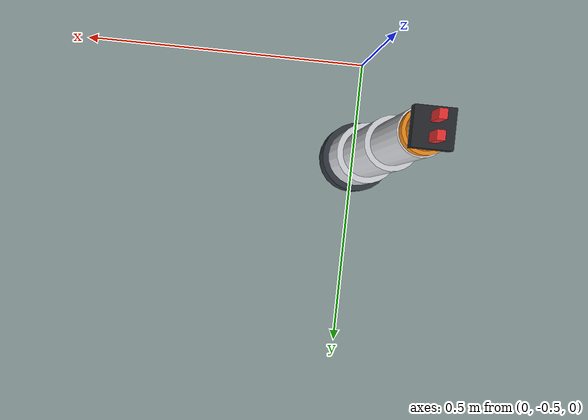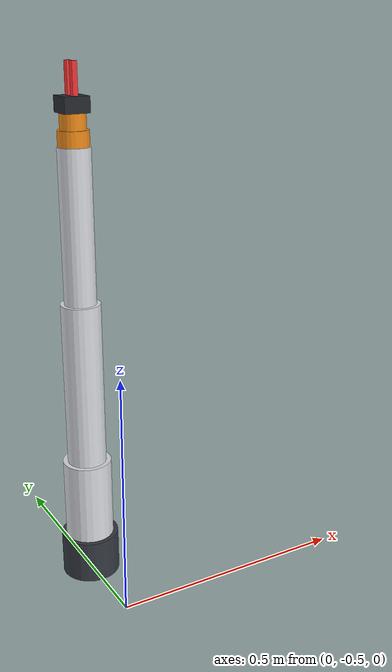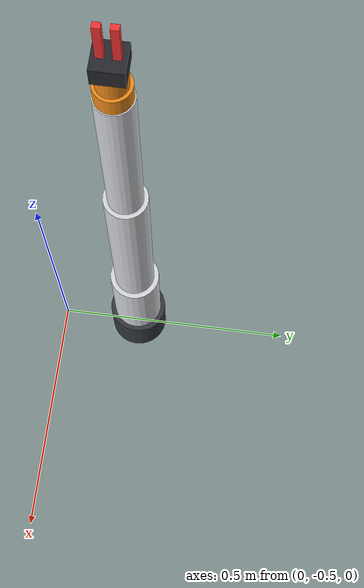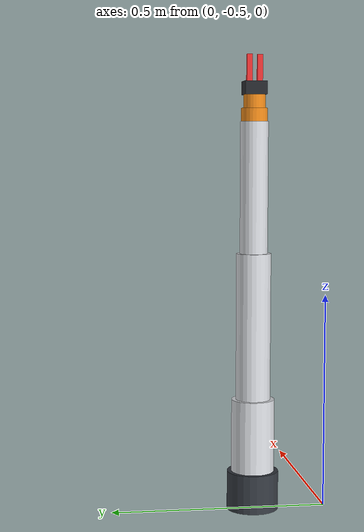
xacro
<?xml version="1.0"?>
<robot xmlns:xacro="http://www.ros.org/wiki/xacro" name="chess_arm">

  <xacro:arg name="ros2_control_hardware_type" default="mock_components"/>
  <xacro:arg name="with_world" default="false"/>

  <xacro:include filename="$(find chess_arm_description)/urdf/chess_arm.urdf.xacro"/>
</robot>

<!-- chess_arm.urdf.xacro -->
<robot xmlns:xacro="http://www.ros.org/wiki/xacro" name="chess_arm">

  <xacro:arg name="ros2_control_hardware_type" default="mock_components"/>
  <xacro:arg name="with_world" default="true"/>

  <xacro:include filename="$(find chess_arm_description)/urdf/arm_params.xacro"/>
  <xacro:include filename="$(find chess_arm_description)/urdf/materials.xacro"/>
  <xacro:include filename="$(find chess_arm_description)/urdf/inertial_macros.xacro"/>
  <xacro:include filename="$(find chess_arm_description)/urdf/arm.macros.xacro"/>
  <xacro:include filename="$(find chess_arm_description)/urdf/gripper.macros.xacro"/>
  <xacro:include filename="$(find chess_arm_description)/urdf/scene.macros.xacro"/>
  <xacro:include filename="$(find chess_arm_description)/urdf/chess_arm.ros2_control.xacro"/>

  <!-- World root frame (fixed frame in RViz / planning frame in MoveIt). -->
  <link name="world"/>

  <!-- Arm base placed in the world: centred on board X, 330 mm behind near edge. -->
  <joint name="world_to_base" type="fixed">
    <parent link="world"/>
    <child  link="base_link"/>
    <origin xyz="${base_x} ${base_y} 0" rpy="0 0 0"/>
  </joint>

  <xacro:build_arm/>
  <xacro:build_gripper parent="link6"/>

  <xacro:chess_arm_ros2_control hw_type="$(arg ros2_control_hardware_type)"/>

  <xacro:if value="$(arg with_world)">
    <xacro:build_board parent="world"/>
    <xacro:build_graveyard parent="world"/>
  </xacro:if>
</robot>

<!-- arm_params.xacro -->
<robot xmlns:xacro="http://www.ros.org/wiki/xacro">

  <!-- Link lengths (m) -->
  <xacro:property name="base_height"  value="0.090"/>  <!-- ground to J1 yaw axis        -->
  <xacro:property name="shoulder_z"   value="0.170"/>  <!-- J1 to J2 shoulder-pitch axis -->
  <xacro:property name="upper_arm"    value="0.340"/>  <!-- J2 to J3 elbow               -->
  <xacro:property name="forearm"      value="0.300"/>  <!-- J3 to wrist centre (J5)      -->
  <xacro:property name="wrist"        value="0.060"/>  <!-- wrist centre to J6 flange    -->
  <xacro:property name="tool_tip"     value="0.110"/>  <!-- flange to gripper grasp pt   -->

  <!-- Arm base (J1 yaw axis) placement in the world (board centre = world origin,
       board top surface at z=0). Base centred on board X, 330 mm behind near edge. -->
  <xacro:property name="base_x"       value="0.0"/>
  <xacro:property name="base_y"       value="-0.330"/>

  <!-- Joint limits (deg), velocity (deg/s), effort (N*m) -->
  <xacro:property name="j1_lo" value="-180"/> <xacro:property name="j1_hi" value="180"/>
  <xacro:property name="j2_lo" value="-110"/> <xacro:property name="j2_hi" value="110"/>
  <xacro:property name="j3_lo" value="-160"/> <xacro:property name="j3_hi" value="160"/>
  <xacro:property name="j4_lo" value="-180"/> <xacro:property name="j4_hi" value="180"/>
  <xacro:property name="j5_lo" value="-120"/> <xacro:property name="j5_hi" value="120"/>
  <xacro:property name="j6_lo" value="-360"/> <xacro:property name="j6_hi" value="360"/>

  <xacro:property name="j1_vel" value="120"/> <xacro:property name="j1_eff" value="25"/>
  <xacro:property name="j2_vel" value="100"/> <xacro:property name="j2_eff" value="40"/>
  <xacro:property name="j3_vel" value="120"/> <xacro:property name="j3_eff" value="25"/>
  <xacro:property name="j4_vel" value="200"/> <xacro:property name="j4_eff" value="8"/>
  <xacro:property name="j5_vel" value="200"/> <xacro:property name="j5_eff" value="8"/>
  <xacro:property name="j6_vel" value="300"/> <xacro:property name="j6_eff" value="4"/>

  <!-- Gripper: single-DOF parallel approximation of the Fin Ray fingers -->
  <xacro:property name="finger_travel" value="0.020"/>   <!-- per-finger open stroke (m)   -->
  <xacro:property name="finger_close"  value="0.006"/>   <!-- per-finger close stroke (m)  -->
  <xacro:property name="finger_half_gap" value="0.012"/> <!-- finger offset from centre @0 -->
  <xacro:property name="finger_length" value="0.090"/>   <!-- finger reach toward grasp pt -->
  <xacro:property name="gripper_vel" value="0.10"/>
  <xacro:property name="gripper_eff" value="10"/>

  <!-- Board: standard tournament Staunton -->
  <xacro:property name="square_size"   value="0.05715"/> <!-- 57.15 mm (2.25")              -->
  <xacro:property name="playing_field" value="0.4572"/>  <!-- 8 * square                    -->
  <xacro:property name="board_border"  value="0.025"/>
  <xacro:property name="board_thick"   value="0.012"/>
  <xacro:property name="board_outer"   value="${playing_field + 2*board_border}"/>

  <!-- Graveyard tray: 16 slots (2 rows x 8 cols) on the +X side -->
  <xacro:property name="gy_row0_x" value="0.285"/>  <!-- near row clears board edge 0.2536 -->
  <xacro:property name="gy_row1_x" value="0.320"/>
  <xacro:property name="gy_col0_y" value="-0.160"/> <!-- 8 cols at 40mm pitch to +0.120    -->
  <xacro:property name="gy_pitch"  value="0.040"/>
  <xacro:property name="gy_slot_r" value="0.018"/>

  <!-- Task heights (m above board surface) -->
  <xacro:property name="grasp_z" value="0.030"/>
  <xacro:property name="lift_z"  value="0.110"/>

  <!-- Derived: distance wrist-centre to grasp point along the tool axis -->
  <xacro:property name="tool_offset" value="${wrist + tool_tip}"/>
</robot>

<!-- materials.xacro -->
<robot xmlns:xacro="http://www.ros.org/wiki/xacro">

  <material name="arm_base">     <color rgba="0.20 0.22 0.25 1.0"/></material>
  <material name="arm_link">     <color rgba="0.85 0.86 0.88 1.0"/></material>
  <material name="arm_wrist">    <color rgba="0.95 0.55 0.10 1.0"/></material>
  <material name="gripper_body"> <color rgba="0.15 0.16 0.18 1.0"/></material>
  <material name="gripper_finger"><color rgba="0.95 0.20 0.20 1.0"/></material>

  <material name="board_light">  <color rgba="0.93 0.86 0.70 1.0"/></material>
  <material name="board_dark">   <color rgba="0.40 0.26 0.16 1.0"/></material>
  <material name="board_frame">  <color rgba="0.12 0.08 0.05 1.0"/></material>
  <material name="graveyard">    <color rgba="0.30 0.30 0.33 1.0"/></material>
  <material name="graveyard_slot"><color rgba="0.55 0.10 0.10 1.0"/></material>
</robot>

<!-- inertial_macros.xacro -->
<robot xmlns:xacro="http://www.ros.org/wiki/xacro">

  <!-- Solid box of size (x,y,z), COM at (cx,cy,cz). -->
  <xacro:macro name="box_inertial" params="mass x y z cx:=0 cy:=0 cz:=0">
    <inertial>
      <origin xyz="${cx} ${cy} ${cz}" rpy="0 0 0"/>
      <mass value="${mass}"/>
      <inertia
        ixx="${mass*(y*y + z*z)/12.0}" ixy="0.0" ixz="0.0"
        iyy="${mass*(x*x + z*z)/12.0}" iyz="0.0"
        izz="${mass*(x*x + y*y)/12.0}"/>
    </inertial>
  </xacro:macro>

  <!-- Solid cylinder, long axis along local Z, length L, radius r, COM at (cx,cy,cz). -->
  <xacro:macro name="cylinder_inertial" params="mass radius length cx:=0 cy:=0 cz:=0">
    <inertial>
      <origin xyz="${cx} ${cy} ${cz}" rpy="0 0 0"/>
      <mass value="${mass}"/>
      <inertia
        ixx="${mass*(3.0*radius*radius + length*length)/12.0}" ixy="0.0" ixz="0.0"
        iyy="${mass*(3.0*radius*radius + length*length)/12.0}" iyz="0.0"
        izz="${mass*radius*radius/2.0}"/>
    </inertial>
  </xacro:macro>
</robot>

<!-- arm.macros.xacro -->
<robot xmlns:xacro="http://www.ros.org/wiki/xacro">

  <!-- A cylindrical segment spanning local 0..length along +Z (joint at its base). -->
  <xacro:macro name="seg_link" params="name radius length mass material">
    <link name="${name}">
      <visual>
        <origin xyz="0 0 ${length/2.0}" rpy="0 0 0"/>
        <geometry><cylinder radius="${radius}" length="${length}"/></geometry>
        <material name="${material}"/>
      </visual>
      <collision>
        <origin xyz="0 0 ${length/2.0}" rpy="0 0 0"/>
        <geometry><cylinder radius="${radius}" length="${length}"/></geometry>
      </collision>
      <xacro:cylinder_inertial mass="${mass}" radius="${radius}" length="${length}" cz="${length/2.0}"/>
    </link>
  </xacro:macro>

  <!-- A short hub centred on its own origin (for the wrist joints whose axes
       coincide at the wrist centre). -->
  <xacro:macro name="hub_link" params="name radius length mass material">
    <link name="${name}">
      <visual>
        <origin xyz="0 0 0" rpy="0 0 0"/>
        <geometry><cylinder radius="${radius}" length="${length}"/></geometry>
        <material name="${material}"/>
      </visual>
      <collision>
        <origin xyz="0 0 0" rpy="0 0 0"/>
        <geometry><cylinder radius="${radius}" length="${length}"/></geometry>
      </collision>
      <xacro:cylinder_inertial mass="${mass}" radius="${radius}" length="${length}"/>
    </link>
  </xacro:macro>

  <!-- One revolute joint. Limits/velocity given in degrees, converted to rad. -->
  <xacro:macro name="rev_joint"
      params="name parent child ox oy oz ax ay az lo_deg hi_deg vel_deg eff">
    <joint name="${name}" type="revolute">
      <parent link="${parent}"/>
      <child  link="${child}"/>
      <origin xyz="${ox} ${oy} ${oz}" rpy="0 0 0"/>
      <axis xyz="${ax} ${ay} ${az}"/>
      <limit lower="${lo_deg*pi/180.0}" upper="${hi_deg*pi/180.0}"
             effort="${eff}" velocity="${vel_deg*pi/180.0}"/>
    </joint>
  </xacro:macro>

  <!-- Build base_link .. link6 (flange). Gripper is attached separately by the
       caller via build_gripper(parent=link6). -->
  <xacro:macro name="build_arm">

    <xacro:seg_link name="base_link" radius="0.060" length="${base_height}" mass="0.60" material="arm_base"/>

    <xacro:rev_joint name="J1_base_yaw" parent="base_link" child="link1"
        ox="0" oy="0" oz="${base_height}" ax="0" ay="0" az="1"
        lo_deg="${j1_lo}" hi_deg="${j1_hi}" vel_deg="${j1_vel}" eff="${j1_eff}"/>
    <xacro:seg_link name="link1" radius="0.050" length="${shoulder_z}" mass="0.40" material="arm_link"/>

    <xacro:rev_joint name="J2_shoulder_pitch" parent="link1" child="link2"
        ox="0" oy="0" oz="${shoulder_z}" ax="0" ay="1" az="0"
        lo_deg="${j2_lo}" hi_deg="${j2_hi}" vel_deg="${j2_vel}" eff="${j2_eff}"/>
    <xacro:seg_link name="link2" radius="0.040" length="${upper_arm}" mass="0.50" material="arm_link"/>

    <xacro:rev_joint name="J3_elbow_pitch" parent="link2" child="link3"
        ox="0" oy="0" oz="${upper_arm}" ax="0" ay="1" az="0"
        lo_deg="${j3_lo}" hi_deg="${j3_hi}" vel_deg="${j3_vel}" eff="${j3_eff}"/>
    <xacro:seg_link name="link3" radius="0.032" length="${forearm}" mass="0.35" material="arm_link"/>

    <!-- J4 sits at the wrist centre (top of the forearm); J5,J6 coincide there. -->
    <xacro:rev_joint name="J4_forearm_roll" parent="link3" child="link4"
        ox="0" oy="0" oz="${forearm}" ax="0" ay="0" az="1"
        lo_deg="${j4_lo}" hi_deg="${j4_hi}" vel_deg="${j4_vel}" eff="${j4_eff}"/>
    <xacro:hub_link name="link4" radius="0.030" length="0.060" mass="0.12" material="arm_wrist"/>

    <xacro:rev_joint name="J5_wrist_pitch" parent="link4" child="link5"
        ox="0" oy="0" oz="0" ax="0" ay="1" az="0"
        lo_deg="${j5_lo}" hi_deg="${j5_hi}" vel_deg="${j5_vel}" eff="${j5_eff}"/>
    <xacro:hub_link name="link5" radius="0.028" length="0.050" mass="0.12" material="arm_wrist"/>

    <xacro:rev_joint name="J6_wrist_roll" parent="link5" child="link6"
        ox="0" oy="0" oz="0" ax="0" ay="0" az="1"
        lo_deg="${j6_lo}" hi_deg="${j6_hi}" vel_deg="${j6_vel}" eff="${j6_eff}"/>
    <xacro:seg_link name="link6" radius="0.025" length="${wrist}" mass="0.10" material="arm_wrist"/>

  </xacro:macro>
</robot>

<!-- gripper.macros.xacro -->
<robot xmlns:xacro="http://www.ros.org/wiki/xacro">

  <xacro:macro name="build_gripper" params="parent">

    <!-- Gripper body bolted to the flange (parent = link6, flange end at z=wrist). -->
    <joint name="flange_to_gripper" type="fixed">
      <parent link="${parent}"/>
      <child  link="gripper_base"/>
      <origin xyz="0 0 ${wrist}" rpy="0 0 0"/>
    </joint>
    <link name="gripper_base">
      <visual>
        <origin xyz="0 0 0.015" rpy="0 0 0"/>
        <geometry><box size="0.050 0.050 0.030"/></geometry>
        <material name="gripper_body"/>
      </visual>
      <collision>
        <origin xyz="0 0 0.015" rpy="0 0 0"/>
        <geometry><box size="0.050 0.050 0.030"/></geometry>
      </collision>
      <xacro:box_inertial mass="0.10" x="0.050" y="0.050" z="0.030" cz="0.015"/>
    </link>

    <!-- Left jaw: the single actuated DOF. -->
    <joint name="gripper_left_joint" type="prismatic">
      <parent link="gripper_base"/>
      <child  link="gripper_left_finger"/>
      <origin xyz="0 ${finger_half_gap} 0" rpy="0 0 0"/>
      <axis xyz="0 1 0"/>
      <limit lower="${-finger_close}" upper="${finger_travel}"
             effort="${gripper_eff}" velocity="${gripper_vel}"/>
    </joint>
    <link name="gripper_left_finger">
      <visual>
        <origin xyz="0 0 ${finger_length/2.0}" rpy="0 0 0"/>
        <geometry><box size="0.010 0.012 ${finger_length}"/></geometry>
        <material name="gripper_finger"/>
      </visual>
      <collision>
        <origin xyz="0 0 ${finger_length/2.0}" rpy="0 0 0"/>
        <geometry><box size="0.010 0.012 ${finger_length}"/></geometry>
      </collision>
      <xacro:box_inertial mass="0.03" x="0.010" y="0.012" z="${finger_length}" cz="${finger_length/2.0}"/>
    </link>

    <!-- Right jaw: mirrors the left (one physical servo). -->
    <joint name="gripper_right_joint" type="prismatic">
      <parent link="gripper_base"/>
      <child  link="gripper_right_finger"/>
      <origin xyz="0 ${-finger_half_gap} 0" rpy="0 0 0"/>
      <axis xyz="0 1 0"/>
      <!-- Follower range = negated leader range (multiplier -1), so the declared
           limits are self-consistent with the mimic and pass URDF/MoveIt checks. -->
      <limit lower="${-finger_travel}" upper="${finger_close}"
             effort="${gripper_eff}" velocity="${gripper_vel}"/>
      <mimic joint="gripper_left_joint" multiplier="-1.0" offset="0.0"/>
    </joint>
    <link name="gripper_right_finger">
      <visual>
        <origin xyz="0 0 ${finger_length/2.0}" rpy="0 0 0"/>
        <geometry><box size="0.010 0.012 ${finger_length}"/></geometry>
        <material name="gripper_finger"/>
      </visual>
      <collision>
        <origin xyz="0 0 ${finger_length/2.0}" rpy="0 0 0"/>
        <geometry><box size="0.010 0.012 ${finger_length}"/></geometry>
      </collision>
      <xacro:box_inertial mass="0.03" x="0.010" y="0.012" z="${finger_length}" cz="${finger_length/2.0}"/>
    </link>

    <!-- Tool centre point = grasp point (IK target frame). -->
    <joint name="gripper_to_tcp" type="fixed">
      <parent link="gripper_base"/>
      <child  link="tcp"/>
      <origin xyz="0 0 ${tool_tip}" rpy="0 0 0"/>
    </joint>
    <link name="tcp"/>

  </xacro:macro>
</robot>
